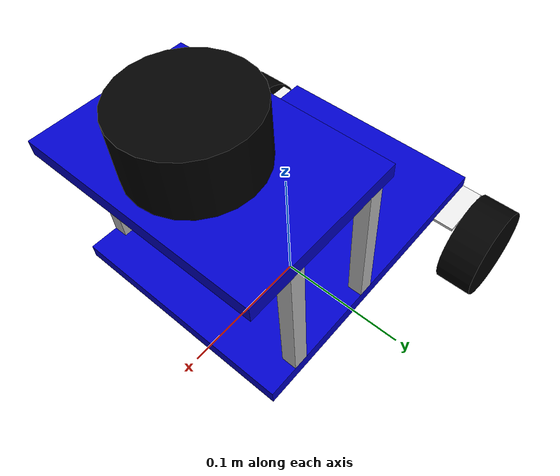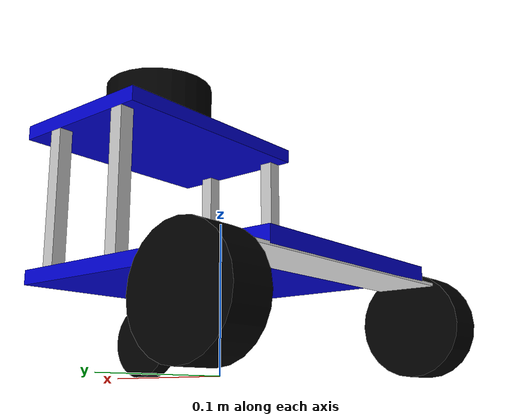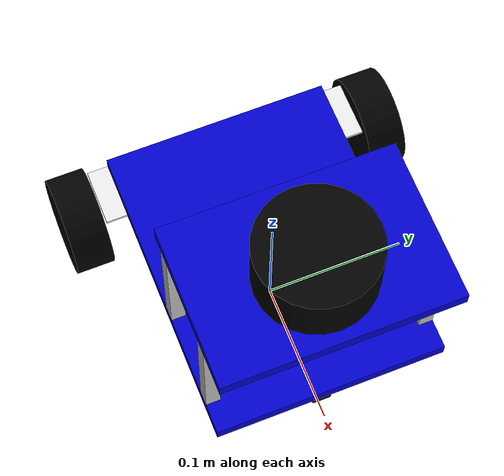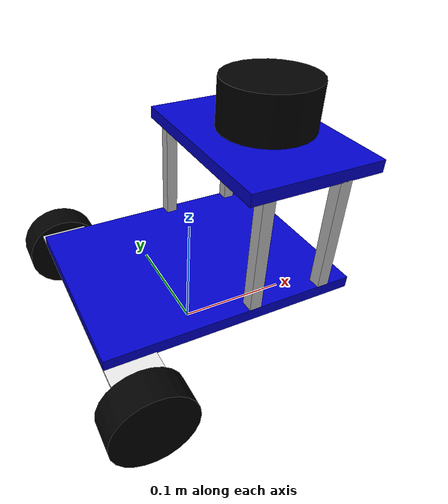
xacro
<?xml version="1.0" ?>
  <robot name="riki_robot" xmlns:xacro="http://ros.org/wiki/xacro">

  <xacro:property name="r200_cam_rgb_px" value="0.005"/>
  <xacro:property name="r200_cam_rgb_py" value="0.018"/>
  <xacro:property name="r200_cam_rgb_pz" value="0.013"/>
  <xacro:property name="r200_cam_depth_offset" value="0.01"/>

    <link name="base_link">
      <visual>
        <geometry>
          <box size="0.21 0.16 0.01"/>
        </geometry>
        <origin rpy="0 0 0" xyz="0.0 0.00 0.065"/>
        <material name="blue">
          <color rgba="0 0 .8 1"/>
        </material>
      </visual>
    </link>

    <link name="perception_deck">
      <visual>
        <geometry>
          <box size="0.11 0.16 0.01"/>
        </geometry>
        <origin rpy="0 0 0" xyz="0.057 0 0.1695"/>
        <material name="blue">
          <color rgba="0 0 .8 1"/>
        </material>
      </visual>
    </link>

    <link name="wheel_left">
      <visual>
        <geometry>
          <cylinder length="0.027" radius="0.0345"/>
        </geometry>
        <origin rpy="1.57 0 0" xyz="-0.085 0.11 0.0345"/>
        <material name="black">
          <color rgba="0 0 0 1"/>
        </material>
      </visual>
    </link>

    <link name="wheel_right">
      <visual>
        <geometry>
          <cylinder length="0.027" radius="0.0345"/>
        </geometry>
        <origin rpy="1.57 0 0" xyz="-0.085 -0.11 0.0345"/>
        <material name="black">
          <color rgba="0 0 0 1"/>
        </material>
      </visual>
    </link>

    <link name="caster_wheel">
      <visual>
        <geometry>
          <cylinder length="0.012" radius="0.025"/>
        </geometry>
        <origin rpy="1.57 0 0" xyz="0.07 0.00 0.025"/>
        <material name="black">
          <color rgba="0 0 0 1"/>
        </material>
      </visual>
    </link>

    <link name="wheel_track">
      <visual>
        <geometry>
          <box size="0.04 0.19 0.002"/>
        </geometry>
        <origin rpy="0 0 0" xyz="-0.085 0.0 0.06"/>
        <material name="white"/>
      </visual>
    </link>

    <link name="scan">
      <visual>
        <geometry>
          <cylinder length="0.04" radius="0.04"/>
        </geometry>
        <material name="black"/>
      </visual>
    </link>

    <link name="left_pole_one">
      <visual>
        <geometry>
          <box size="0.01 0.01 0.095"/>
        </geometry>
        <origin rpy="0 0 0" xyz="0.017 0.075 0.1175"/>
        <material name="silver">
          <color rgba="192 192 192 0.6"/>
        </material>
      </visual>
    </link>

    <link name="left_pole_two">
      <visual>
        <geometry>
          <box size="0.01 0.01 0.095"/>
        </geometry>
        <origin rpy="0 0 0" xyz="0.08 0.075 0.1175"/>
        <material name="silver">
          <color rgba="192 192 192 0.6"/>
        </material>
      </visual>
    </link>

    <link name="right_pole_one">
      <visual>
        <geometry>
          <box size="0.01 0.01 0.095"/>
        </geometry>
        <origin rpy="0 0 0" xyz="0.017 -0.075 0.1175"/>
        <material name="silver">
          <color rgba="192 192 192 0.6"/>
        </material>
      </visual>
    </link>

    <link name="right_pole_two">
      <visual>
        <geometry>
          <box size="0.01 0.01 0.095"/>
        </geometry>
        <origin rpy="0 0 0" xyz="0.08 -0.075 0.1175"/>
        <material name="silver">
          <color rgba="192 192 192 0.6"/>
        </material>
      </visual>
    </link>

    <joint name="base_to_wheel_left" type="fixed">
      <parent link="base_link"/>
      <child link="wheel_left"/>
      <origin xyz="0 0 0"/>
    </joint>

    <joint name="base_to_wheel_right" type="fixed">
      <parent link="base_link"/>
      <child link="wheel_right"/>
      <origin xyz="0 0 0"/>
    </joint>

    <joint name="base_to_wheel_track" type="fixed">
      <parent link="base_link"/>
      <child link="wheel_track"/>
      <origin xyz="0 0 0"/>
    </joint>

    <joint name="base_to_caster_wheel" type="fixed">
      <parent link="base_link"/>
      <child link="caster_wheel"/>
      <origin xyz="0 0 0"/>
    </joint>

    <joint name="base_to_scan" type="fixed">
      <parent link="base_link"/>
      <child link="scan"/>
      <origin xyz="0.065 0.0 0.1960"/>
    </joint>

    <joint name="base_to_left_pole_one" type="fixed">
      <parent link="base_link"/>
      <child link="left_pole_one"/>
      <origin xyz="0 0 0"/>
    </joint>

    <joint name="base_to_left_pole_two" type="fixed">
      <parent link="base_link"/>
      <child link="left_pole_two"/>
      <origin xyz="0 0 0"/>
    </joint>

    <joint name="base_to_right_pole_one" type="fixed">
      <parent link="base_link"/>
      <child link="right_pole_one"/>
      <origin xyz="0 0 0"/>
    </joint>

    <joint name="base_to_right_pole_two" type="fixed">
      <parent link="base_link"/>
      <child link="right_pole_two"/>
      <origin xyz="0 0 0"/>
    </joint>

    <joint name="base_to_perception_deck" type="fixed">
      <parent link="base_link"/>
      <child link="perception_deck"/>
      <origin xyz="0 0 0"/>
    </joint>
  </robot>
